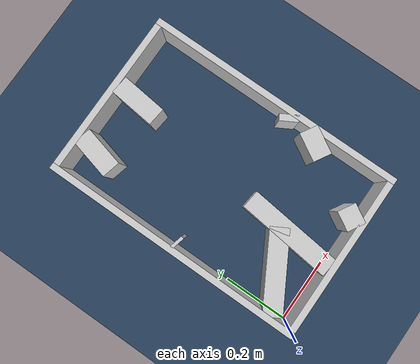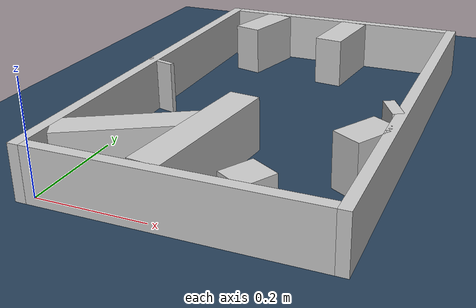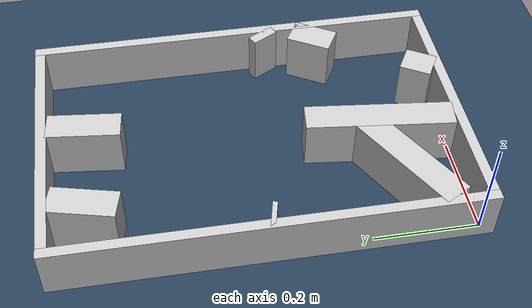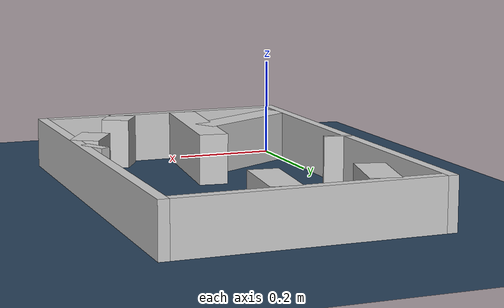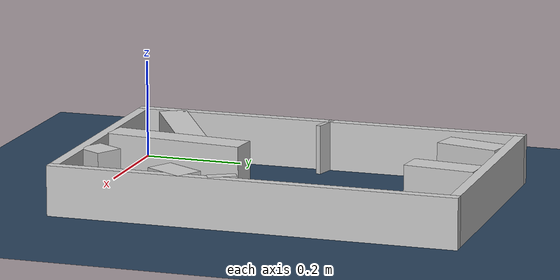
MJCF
<?xml version="1.0" ?>
<mujoco model="generated_real_template">
  <compiler angle="degree"/>
  <option timestep="0.002" integrator="implicitfast" iterations="100" cone="elliptic"/>
  <default>
    <geom density="1"/>
  </default>
  <asset>
    <texture builtin="gradient" height="3072" rgb1="0.3 0.5 0.7" rgb2="0 0 0" type="skybox" width="512"/>
    <texture builtin="checker" height="300" mark="edge" markrgb="0.8 0.8 0.8" name="groundplane" rgb1="0.2 0.3 0.4" rgb2="0.1 0.2 0.3" type="2d" width="300"/>
    <material name="groundplane" reflectance="0.2" texrepeat="5 5" texture="groundplane" texuniform="true"/>
  </asset>
  <worldbody>
    <light dir="0 0 -1" directional="true" pos="0 0 1.5"/>
    <geom name="floor" type="plane" condim="4" friction="0.5 0.005 0.001" material="groundplane" size="0 0 0.05"/>
    <body name="walls">
      <geom name="wall_boundary_left" type="box" condim="4" friction="1.0 0.005 0.0001" rgba="0.8 0.8 0.8 1" pos="-0.010000 0.387500 0.050000" euler="0 0 0.000000" size="0.010000 0.407500 0.050000"/>
      <geom name="wall_boundary_right" type="box" condim="4" friction="1.0 0.005 0.0001" rgba="0.8 0.8 0.8 1" pos="0.500000 0.387500 0.050000" euler="0 0 0.000000" size="0.010000 0.407500 0.050000"/>
      <geom name="wall_boundary_bottom" type="box" condim="4" friction="1.0 0.005 0.0001" rgba="0.8 0.8 0.8 1" pos="0.245000 -0.010000 0.050000" euler="0 0 0.000000" size="0.245000 0.010000 0.050000"/>
      <geom name="wall_boundary_top" type="box" condim="4" friction="1.0 0.005 0.0001" rgba="0.8 0.8 0.8 1" pos="0.245000 0.785000 0.050000" euler="0 0 0.000000" size="0.245000 0.010000 0.050000"/>
      <geom name="wall_inner_1_1" type="box" condim="4" friction="1.0 0.005 0.0001" rgba="0.8 0.8 0.8 1" pos="0.090342 0.712823 0.050000" euler="0 0 -103.975350" size="0.064074 0.028500 0.050000"/>
      <geom name="wall_inner_1_2" type="box" condim="4" friction="1.0 0.005 0.0001" rgba="0.8 0.8 0.8 1" pos="0.008782 0.385103 0.050000" euler="0 0 -103.975350" size="0.004657 0.028500 0.050000"/>
      <geom name="wall_inner_2_1" type="box" condim="4" friction="1.0 0.005 0.0001" rgba="0.8 0.8 0.8 1" pos="0.480972 0.325081 0.050000" euler="0 0 -150.622501" size="0.010360 0.028500 0.050000"/>
      <geom name="wall_inner_2_2" type="box" condim="4" friction="1.0 0.005 0.0001" rgba="0.8 0.8 0.8 1" pos="0.106642 0.114350 0.050000" euler="0 0 -150.622501" size="0.122379 0.028500 0.050000"/>
      <geom name="wall_inner_3_1" type="box" condim="4" friction="1.0 0.005 0.0001" rgba="0.8 0.8 0.8 1" pos="0.348379 0.026852 0.050000" euler="0 0 59.788934" size="0.031072 0.028500 0.050000"/>
      <geom name="wall_inner_3_2" type="box" condim="4" friction="1.0 0.005 0.0001" rgba="0.8 0.8 0.8 1" pos="0.462825 0.223403 0.050000" euler="0 0 59.788934" size="0.044804 0.028500 0.050000"/>
      <geom name="wall_inner_4_1" type="box" condim="4" friction="1.0 0.005 0.0001" rgba="0.8 0.8 0.8 1" pos="0.276782 0.704372 0.050000" euler="0 0 -96.347944" size="0.071063 0.028500 0.050000"/>
      <geom name="wall_inner_4_2" type="box" condim="4" friction="1.0 0.005 0.0001" rgba="0.8 0.8 0.8 1" pos="0.214311 0.142830 0.050000" euler="0 0 -96.347944" size="0.143711 0.028500 0.050000"/>
    </body>
  </worldbody>
</mujoco>
